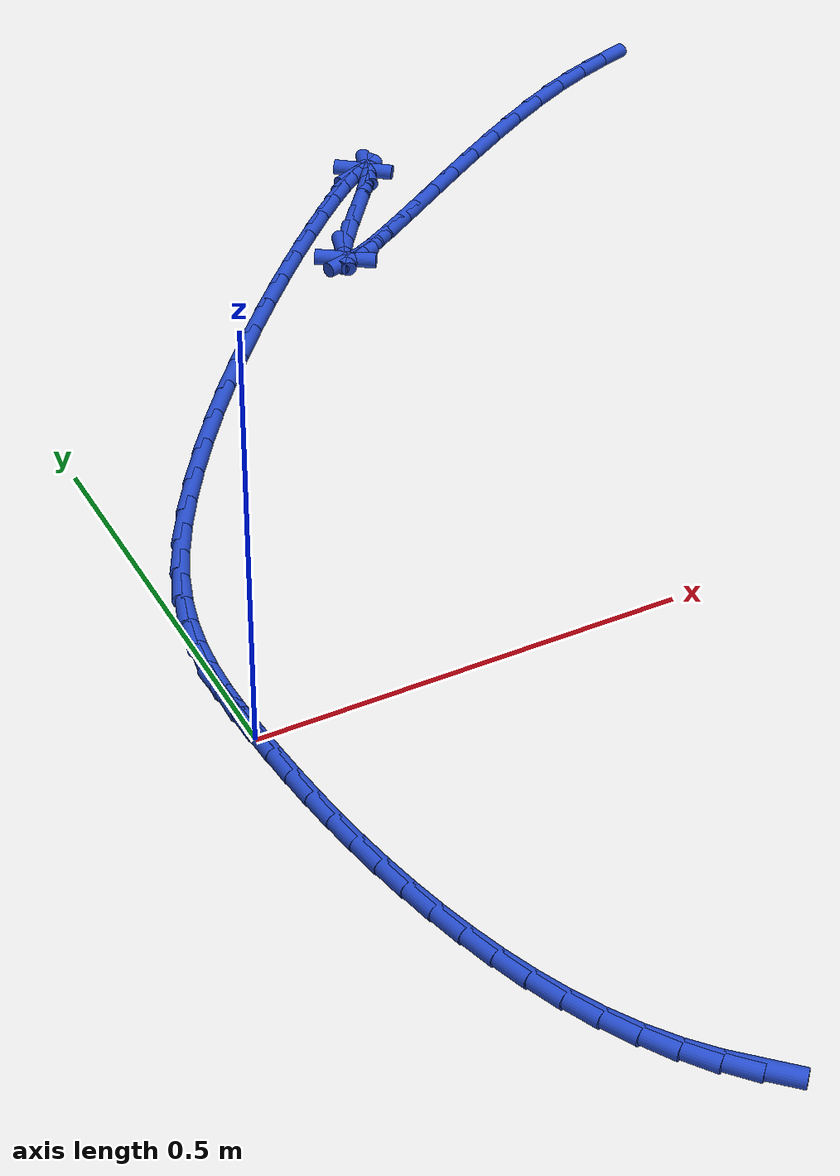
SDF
<sdf version="1.6">
 <world name="default">
  <model name="ground_plane">
   <static>1</static>
   <link name="link">
    <collision name="collision">
     <geometry><plane><normal>0 0 1</normal><size>100 100</size></plane></geometry>
     <surface><friction><ode><mu>100</mu><mu2>50</mu2></ode></friction></surface>
    </collision>
    <visual name="visual">
     <cast_shadows>0</cast_shadows>
     <geometry><plane><normal>0 0 1</normal><size>100 100</size></plane></geometry>
     <material>
      <script><uri>file://media/materials/scripts/gazebo.material</uri><name>Gazebo/WhiteGlow</name></script>
     </material>
    </visual>
   </link>
  </model>
  <model name="line">
   <link name="link_0">
    <pose>-5.421010862427522e-18 -6.245004513516506e-17 0.01 0 1.57 -1.516971738887557</pose>
    <collision name="collision">
     <geometry><cylinder><radius>0.01</radius><length>0.08</length></cylinder></geometry>
    </collision>
    <visual name="visual">
     <material>
      <script><name>Gazebo/Blue</name><uri>file://media/materials/scripts/gazebo.material</uri></script>
     </material>
     <geometry><cylinder><radius>0.01</radius><length>0.08</length></cylinder></geometry>
    </visual>
   </link>
   <link name="link_1">
    <pose>-0.0019677262206567684 0.036522818023814574 0.01 0 1.57 -1.5498940656108167</pose>
    <collision name="collision">
     <geometry><cylinder><radius>0.01</radius><length>0.08</length></cylinder></geometry>
    </collision>
    <visual name="visual">
     <material>
      <script><name>Gazebo/Blue</name><uri>file://media/materials/scripts/gazebo.material</uri></script>
     </material>
     <geometry><cylinder><radius>0.01</radius><length>0.08</length></cylinder></geometry>
    </visual>
   </link>
   <link name="link_2">
    <pose>-0.0027258256793479484 0.072786313303385 0.01 0 1.57 1.542573850887566</pose>
    <collision name="collision">
     <geometry><cylinder><radius>0.01</radius><length>0.08</length></cylinder></geometry>
    </collision>
    <visual name="visual">
     <material>
      <script><name>Gazebo/Blue</name><uri>file://media/materials/scripts/gazebo.material</uri></script>
     </material>
     <geometry><cylinder><radius>0.01</radius><length>0.08</length></cylinder></geometry>
    </visual>
   </link>
   <link name="link_3">
    <pose>-0.0016979489906153566 0.10919714322356291 0.01 0 1.57 1.4793379034176113</pose>
    <collision name="collision">
     <geometry><cylinder><radius>0.01</radius><length>0.08</length></cylinder></geometry>
    </collision>
    <visual name="visual">
     <material>
      <script><name>Gazebo/Blue</name><uri>file://media/materials/scripts/gazebo.material</uri></script>
     </material>
     <geometry><cylinder><radius>0.01</radius><length>0.08</length></cylinder></geometry>
    </visual>
   </link>
   <link name="link_4">
    <pose>0.0016922532309991837 0.14616196516920005 0.01 0 1.57 1.4054433089721208</pose>
    <collision name="collision">
     <geometry><cylinder><radius>0.01</radius><length>0.08</length></cylinder></geometry>
    </collision>
    <visual name="visual">
     <material>
      <script><name>Gazebo/Blue</name><uri>file://media/materials/scripts/gazebo.material</uri></script>
     </material>
     <geometry><cylinder><radius>0.01</radius><length>0.08</length></cylinder></geometry>
    </visual>
   </link>
   <link name="link_5">
    <pose>0.008021130370953857 0.18408743652514828 0.01 0 1.57 1.3253217344991335</pose>
    <collision name="collision">
     <geometry><cylinder><radius>0.01</radius><length>0.08</length></cylinder></geometry>
    </collision>
    <visual name="visual">
     <material>
      <script><name>Gazebo/Blue</name><uri>file://media/materials/scripts/gazebo.material</uri></script>
     </material>
     <geometry><cylinder><radius>0.01</radius><length>0.08</length></cylinder></geometry>
    </visual>
   </link>
   <link name="link_6">
    <pose>0.017865031814706844 0.22338021467625926 0.01 0 1.57 1.243656388170542</pose>
    <collision name="collision">
     <geometry><cylinder><radius>0.01</radius><length>0.08</length></cylinder></geometry>
    </collision>
    <visual name="visual">
     <material>
      <script><name>Gazebo/Blue</name><uri>file://media/materials/scripts/gazebo.material</uri></script>
     </material>
     <geometry><cylinder><radius>0.01</radius><length>0.08</length></cylinder></geometry>
    </visual>
   </link>
   <link name="link_7">
    <pose>0.03180030694771633 0.2644469570073847 0.01 0 1.57 1.1646350907035172</pose>
    <collision name="collision">
     <geometry><cylinder><radius>0.01</radius><length>0.08</length></cylinder></geometry>
    </collision>
    <visual name="visual">
     <material>
      <script><name>Gazebo/Blue</name><uri>file://media/materials/scripts/gazebo.material</uri></script>
     </material>
     <geometry><cylinder><radius>0.01</radius><length>0.08</length></cylinder></geometry>
    </visual>
   </link>
   <link name="link_8">
    <pose>0.050398222578810534 0.307690395071881 0.01 0 1.57 1.0955145047660175</pose>
    <collision name="collision">
     <geometry><cylinder><radius>0.01</radius><length>0.08</length></cylinder></geometry>
    </collision>
    <visual name="visual">
     <material>
      <script><name>Gazebo/Blue</name><uri>file://media/materials/scripts/gazebo.material</uri></script>
     </material>
     <geometry><cylinder><radius>0.01</radius><length>0.08</length></cylinder></geometry>
    </visual>
   </link>
   <link name="link_9">
    <pose>0.07381498965637319 0.35319266725000886 0.01 0 1.57 1.041306595246719</pose>
    <collision name="collision">
     <geometry><cylinder><radius>0.01</radius><length>0.08</length></cylinder></geometry>
    </collision>
    <visual name="visual">
     <material>
      <script><name>Gazebo/Blue</name><uri>file://media/materials/scripts/gazebo.material</uri></script>
     </material>
     <geometry><cylinder><radius>0.01</radius><length>0.08</length></cylinder></geometry>
    </visual>
   </link>
   <link name="link_10">
    <pose>0.10149063260583117 0.40048272250391725 0.01 0 1.57 0.998125263919502</pose>
    <collision name="collision">
     <geometry><cylinder><radius>0.01</radius><length>0.08</length></cylinder></geometry>
    </collision>
    <visual name="visual">
     <material>
      <script><name>Gazebo/Blue</name><uri>file://media/materials/scripts/gazebo.material</uri></script>
     </material>
     <geometry><cylinder><radius>0.01</radius><length>0.08</length></cylinder></geometry>
    </visual>
   </link>
   <link name="link_11">
    <pose>0.1327941896283823 0.4490346793475182 0.01 0 1.57 0.9628135906939901</pose>
    <collision name="collision">
     <geometry><cylinder><radius>0.01</radius><length>0.08</length></cylinder></geometry>
    </collision>
    <visual name="visual">
     <material>
      <script><name>Gazebo/Blue</name><uri>file://media/materials/scripts/gazebo.material</uri></script>
     </material>
     <geometry><cylinder><radius>0.01</radius><length>0.08</length></cylinder></geometry>
    </visual>
   </link>
   <link name="link_12">
    <pose>0.16709469892522447 0.4983226562947236 0.01 0 1.57 0.9332314967239804</pose>
    <collision name="collision">
     <geometry><cylinder><radius>0.01</radius><length>0.08</length></cylinder></geometry>
    </collision>
    <visual name="visual">
     <material>
      <script><name>Gazebo/Blue</name><uri>file://media/materials/scripts/gazebo.material</uri></script>
     </material>
     <geometry><cylinder><radius>0.01</radius><length>0.08</length></cylinder></geometry>
    </visual>
   </link>
   <link name="link_13">
    <pose>0.20376119869755566 0.5478207718594456 0.01 0 1.57 0.9078736980603397</pose>
    <collision name="collision">
     <geometry><cylinder><radius>0.01</radius><length>0.08</length></cylinder></geometry>
    </collision>
    <visual name="visual">
     <material>
      <script><name>Gazebo/Blue</name><uri>file://media/materials/scripts/gazebo.material</uri></script>
     </material>
     <geometry><cylinder><radius>0.01</radius><length>0.08</length></cylinder></geometry>
    </visual>
   </link>
   <link name="link_14">
    <pose>0.24216272714657391 0.597003144555596 0.01 0 1.57 0.8856361692368085</pose>
    <collision name="collision">
     <geometry><cylinder><radius>0.01</radius><length>0.08</length></cylinder></geometry>
    </collision>
    <visual name="visual">
     <material>
      <script><name>Gazebo/Blue</name><uri>file://media/materials/scripts/gazebo.material</uri></script>
     </material>
     <geometry><cylinder><radius>0.01</radius><length>0.08</length></cylinder></geometry>
    </visual>
   </link>
   <link name="link_15">
    <pose>0.28166832247347695 0.6453438928970868 0.01 0 1.57 0.8656667961104185</pose>
    <collision name="collision">
     <geometry><cylinder><radius>0.01</radius><length>0.08</length></cylinder></geometry>
    </collision>
    <visual name="visual">
     <material>
      <script><name>Gazebo/Blue</name><uri>file://media/materials/scripts/gazebo.material</uri></script>
     </material>
     <geometry><cylinder><radius>0.01</radius><length>0.08</length></cylinder></geometry>
    </visual>
   </link>
   <link name="link_16">
    <pose>0.3216470228794627 0.6923171353978297 0.01 0 1.57 0.8472622095039724</pose>
    <collision name="collision">
     <geometry><cylinder><radius>0.01</radius><length>0.08</length></cylinder></geometry>
    </collision>
    <visual name="visual">
     <material>
      <script><name>Gazebo/Blue</name><uri>file://media/materials/scripts/gazebo.material</uri></script>
     </material>
     <geometry><cylinder><radius>0.01</radius><length>0.08</length></cylinder></geometry>
    </visual>
   </link>
   <link name="link_17">
    <pose>0.3614678665657291 0.7373969905717369 0.01 0 1.57 0.8297862383139776</pose>
    <collision name="collision">
     <geometry><cylinder><radius>0.01</radius><length>0.08</length></cylinder></geometry>
    </collision>
    <visual name="visual">
     <material>
      <script><name>Gazebo/Blue</name><uri>file://media/materials/scripts/gazebo.material</uri></script>
     </material>
     <geometry><cylinder><radius>0.01</radius><length>0.08</length></cylinder></geometry>
    </visual>
   </link>
   <link name="link_18">
    <pose>0.4004998917334741 0.7800575769327205 0.01 0 1.57 0.8125898857126308</pose>
    <collision name="collision">
     <geometry><cylinder><radius>0.01</radius><length>0.08</length></cylinder></geometry>
    </collision>
    <visual name="visual">
     <material>
      <script><name>Gazebo/Blue</name><uri>file://media/materials/scripts/gazebo.material</uri></script>
     </material>
     <geometry><cylinder><radius>0.01</radius><length>0.08</length></cylinder></geometry>
    </visual>
   </link>
   <link name="link_19">
    <pose>0.43811213658389586 0.8197730129946923 0.01 0 1.57 0.7949082578066576</pose>
    <collision name="collision">
     <geometry><cylinder><radius>0.01</radius><length>0.08</length></cylinder></geometry>
    </collision>
    <visual name="visual">
     <material>
      <script><name>Gazebo/Blue</name><uri>file://media/materials/scripts/gazebo.material</uri></script>
     </material>
     <geometry><cylinder><radius>0.01</radius><length>0.08</length></cylinder></geometry>
    </visual>
   </link>
   <link name="link_20">
    <pose>0.47367363931819195 0.8560174172715643 0.01 0 1.57 0.7756896687060839</pose>
    <collision name="collision">
     <geometry><cylinder><radius>0.01</radius><length>0.08</length></cylinder></geometry>
    </collision>
    <visual name="visual">
     <material>
      <script><name>Gazebo/Blue</name><uri>file://media/materials/scripts/gazebo.material</uri></script>
     </material>
     <geometry><cylinder><radius>0.01</radius><length>0.08</length></cylinder></geometry>
    </visual>
   </link>
   <link name="link_21">
    <pose>0.5065534381375605 0.8882649082772485 0.01 0 1.57 0.7532504360639813</pose>
    <collision name="collision">
     <geometry><cylinder><radius>0.01</radius><length>0.08</length></cylinder></geometry>
    </collision>
    <visual name="visual">
     <material>
      <script><name>Gazebo/Blue</name><uri>file://media/materials/scripts/gazebo.material</uri></script>
     </material>
     <geometry><cylinder><radius>0.01</radius><length>0.08</length></cylinder></geometry>
    </visual>
   </link>
   <link name="link_22">
    <pose>0.5361205712431993 0.9159896045256567 0.01 0 1.57 0.7244486027931144</pose>
    <collision name="collision">
     <geometry><cylinder><radius>0.01</radius><length>0.08</length></cylinder></geometry>
    </collision>
    <visual name="visual">
     <material>
      <script><name>Gazebo/Blue</name><uri>file://media/materials/scripts/gazebo.material</uri></script>
     </material>
     <geometry><cylinder><radius>0.01</radius><length>0.08</length></cylinder></geometry>
    </visual>
   </link>
   <link name="link_23">
    <pose>0.5617440768363061 0.9386656245307008 0.01 0 1.57 0.6822941702992007</pose>
    <collision name="collision">
     <geometry><cylinder><radius>0.01</radius><length>0.08</length></cylinder></geometry>
    </collision>
    <visual name="visual">
     <material>
      <script><name>Gazebo/Blue</name><uri>file://media/materials/scripts/gazebo.material</uri></script>
     </material>
     <geometry><cylinder><radius>0.01</radius><length>0.08</length></cylinder></geometry>
    </visual>
   </link>
   <link name="link_24">
    <pose>0.5827929931180793 0.9557670868062931 0.01 0 1.57 0.606931714351735</pose>
    <collision name="collision">
     <geometry><cylinder><radius>0.01</radius><length>0.08</length></cylinder></geometry>
    </collision>
    <visual name="visual">
     <material>
      <script><name>Gazebo/Blue</name><uri>file://media/materials/scripts/gazebo.material</uri></script>
     </material>
     <geometry><cylinder><radius>0.01</radius><length>0.08</length></cylinder></geometry>
    </visual>
   </link>
   <link name="link_25">
    <pose>0.5986363582897163 0.9667681098663448 0.01 0 1.57 0.4121339911330432</pose>
    <collision name="collision">
     <geometry><cylinder><radius>0.01</radius><length>0.08</length></cylinder></geometry>
    </collision>
    <visual name="visual">
     <material>
      <script><name>Gazebo/Blue</name><uri>file://media/materials/scripts/gazebo.material</uri></script>
     </material>
     <geometry><cylinder><radius>0.01</radius><length>0.08</length></cylinder></geometry>
    </visual>
   </link>
   <link name="link_26">
    <pose>0.6086432105524155 0.9711428122247691 0.01 0 1.57 -0.6653680736597327</pose>
    <collision name="collision">
     <geometry><cylinder><radius>0.01</radius><length>0.08</length></cylinder></geometry>
    </collision>
    <visual name="visual">
     <material>
      <script><name>Gazebo/Blue</name><uri>file://media/materials/scripts/gazebo.material</uri></script>
     </material>
     <geometry><cylinder><radius>0.01</radius><length>0.08</length></cylinder></geometry>
    </visual>
   </link>
   <link name="link_27">
    <pose>0.6121825881073746 0.9683653123954771 0.01 0 1.57 1.242701169890033</pose>
    <collision name="collision">
     <geometry><cylinder><radius>0.01</radius><length>0.08</length></cylinder></geometry>
    </collision>
    <visual name="visual">
     <material>
      <script><name>Gazebo/Blue</name><uri>file://media/materials/scripts/gazebo.material</uri></script>
     </material>
     <geometry><cylinder><radius>0.01</radius><length>0.08</length></cylinder></geometry>
    </visual>
   </link>
   <link name="link_28">
    <pose>0.6086235291557914 0.9579097288923809 0.01 0 1.57 1.0267308145427323</pose>
    <collision name="collision">
     <geometry><cylinder><radius>0.01</radius><length>0.08</length></cylinder></geometry>
    </collision>
    <visual name="visual">
     <material>
      <script><name>Gazebo/Blue</name><uri>file://media/materials/scripts/gazebo.material</uri></script>
     </material>
     <geometry><cylinder><radius>0.01</radius><length>0.08</length></cylinder></geometry>
    </visual>
   </link>
   <link name="link_29">
    <pose>0.597335071898864 0.9392501802293926 0.01 0 1.57 0.9500358720568822</pose>
    <collision name="collision">
     <geometry><cylinder><radius>0.01</radius><length>0.08</length></cylinder></geometry>
    </collision>
    <visual name="visual">
     <material>
      <script><name>Gazebo/Blue</name><uri>file://media/materials/scripts/gazebo.material</uri></script>
     </material>
     <geometry><cylinder><radius>0.01</radius><length>0.08</length></cylinder></geometry>
    </visual>
   </link>
   <link name="link_30">
    <pose>0.577900679022999 0.9120714030815712 0.01 0 1.57 0.9229881037805641</pose>
    <collision name="collision">
     <geometry><cylinder><radius>0.01</radius><length>0.08</length></cylinder></geometry>
    </collision>
    <visual name="visual">
     <material>
      <script><name>Gazebo/Blue</name><uri>file://media/materials/scripts/gazebo.material</uri></script>
     </material>
     <geometry><cylinder><radius>0.01</radius><length>0.08</length></cylinder></geometry>
    </visual>
   </link>
   <link name="link_31">
    <pose>0.5528014206703311 0.8789043051359231 0.01 0 1.57 0.9223799997988826</pose>
    <collision name="collision">
     <geometry><cylinder><radius>0.01</radius><length>0.08</length></cylinder></geometry>
    </collision>
    <visual name="visual">
     <material>
      <script><name>Gazebo/Blue</name><uri>file://media/materials/scripts/gazebo.material</uri></script>
     </material>
     <geometry><cylinder><radius>0.01</radius><length>0.08</length></cylinder></geometry>
    </visual>
   </link>
   <link name="link_32">
    <pose>0.5265999586464951 0.8443244346810134 0.01 0 1.57 0.9445234965934007</pose>
    <collision name="collision">
     <geometry><cylinder><radius>0.01</radius><length>0.08</length></cylinder></geometry>
    </collision>
    <visual name="visual">
     <material>
      <script><name>Gazebo/Blue</name><uri>file://media/materials/scripts/gazebo.material</uri></script>
     </material>
     <geometry><cylinder><radius>0.01</radius><length>0.08</length></cylinder></geometry>
    </visual>
   </link>
   <link name="link_33">
    <pose>0.5039045586338088 0.8129521343517196 0.01 0 1.57 1.0159028905434107</pose>
    <collision name="collision">
     <geometry><cylinder><radius>0.01</radius><length>0.08</length></cylinder></geometry>
    </collision>
    <visual name="visual">
     <material>
      <script><name>Gazebo/Blue</name><uri>file://media/materials/scripts/gazebo.material</uri></script>
     </material>
     <geometry><cylinder><radius>0.01</radius><length>0.08</length></cylinder></geometry>
    </visual>
   </link>
   <link name="link_34">
    <pose>0.4892876046066976 0.7893710163203097 0.01 0 1.57 1.2760694479814363</pose>
    <collision name="collision">
     <geometry><cylinder><radius>0.01</radius><length>0.08</length></cylinder></geometry>
    </collision>
    <visual name="visual">
     <material>
      <script><name>Gazebo/Blue</name><uri>file://media/materials/scripts/gazebo.material</uri></script>
     </material>
     <geometry><cylinder><radius>0.01</radius><length>0.08</length></cylinder></geometry>
    </visual>
   </link>
   <link name="link_35">
    <pose>0.48523841470276363 0.7760323535721672 0.01 0 1.57 -0.5916208756530282</pose>
    <collision name="collision">
     <geometry><cylinder><radius>0.01</radius><length>0.08</length></cylinder></geometry>
    </collision>
    <visual name="visual">
     <material>
      <script><name>Gazebo/Blue</name><uri>file://media/materials/scripts/gazebo.material</uri></script>
     </material>
     <geometry><cylinder><radius>0.01</radius><length>0.08</length></cylinder></geometry>
    </visual>
   </link>
   <link name="link_36">
    <pose>0.49105708342145665 0.7721227567766041 0.01 0 1.57 0.29238355709120445</pose>
    <collision name="collision">
     <geometry><cylinder><radius>0.01</radius><length>0.08</length></cylinder></geometry>
    </collision>
    <visual name="visual">
     <material>
      <script><name>Gazebo/Blue</name><uri>file://media/materials/scripts/gazebo.material</uri></script>
     </material>
     <geometry><cylinder><radius>0.01</radius><length>0.08</length></cylinder></geometry>
    </visual>
   </link>
   <link name="link_37">
    <pose>0.5057739319562572 0.7765526820130366 0.01 0 1.57 0.4761877554910015</pose>
    <collision name="collision">
     <geometry><cylinder><radius>0.01</radius><length>0.08</length></cylinder></geometry>
    </collision>
    <visual name="visual">
     <material>
      <script><name>Gazebo/Blue</name><uri>file://media/materials/scripts/gazebo.material</uri></script>
     </material>
     <geometry><cylinder><radius>0.01</radius><length>0.08</length></cylinder></geometry>
    </visual>
   </link>
   <link name="link_38">
    <pose>0.528419281500646 0.7882325853608815 0.01 0 1.57 0.5423504735451992</pose>
    <collision name="collision">
     <geometry><cylinder><radius>0.01</radius><length>0.08</length></cylinder></geometry>
    </collision>
    <visual name="visual">
     <material>
      <script><name>Gazebo/Blue</name><uri>file://media/materials/scripts/gazebo.material</uri></script>
     </material>
     <geometry><cylinder><radius>0.01</radius><length>0.08</length></cylinder></geometry>
    </visual>
   </link>
   <link name="link_39">
    <pose>0.5580234532481033 0.8060729228995551 0.01 0 1.57 0.5719298837502761</pose>
    <collision name="collision">
     <geometry><cylinder><radius>0.01</radius><length>0.08</length></cylinder></geometry>
    </collision>
    <visual name="visual">
     <material>
      <script><name>Gazebo/Blue</name><uri>file://media/materials/scripts/gazebo.material</uri></script>
     </material>
     <geometry><cylinder><radius>0.01</radius><length>0.08</length></cylinder></geometry>
    </visual>
   </link>
   <link name="link_40">
    <pose>0.5936167683921101 0.8289841507084734 0.01 0 1.57 0.5848832302612053</pose>
    <collision name="collision">
     <geometry><cylinder><radius>0.01</radius><length>0.08</length></cylinder></geometry>
    </collision>
    <visual name="visual">
     <material>
      <script><name>Gazebo/Blue</name><uri>file://media/materials/scripts/gazebo.material</uri></script>
     </material>
     <geometry><cylinder><radius>0.01</radius><length>0.08</length></cylinder></geometry>
    </visual>
   </link>
   <link name="link_41">
    <pose>0.634229548126147 0.8558767248670534 0.01 0 1.57 0.5881472576147512</pose>
    <collision name="collision">
     <geometry><cylinder><radius>0.01</radius><length>0.08</length></cylinder></geometry>
    </collision>
    <visual name="visual">
     <material>
      <script><name>Gazebo/Blue</name><uri>file://media/materials/scripts/gazebo.material</uri></script>
     </material>
     <geometry><cylinder><radius>0.01</radius><length>0.08</length></cylinder></geometry>
    </visual>
   </link>
   <link name="link_42">
    <pose>0.6788921136436937 0.8856611014547106 0.01 0 1.57 0.5844879127156619</pose>
    <collision name="collision">
     <geometry><cylinder><radius>0.01</radius><length>0.08</length></cylinder></geometry>
    </collision>
    <visual name="visual">
     <material>
      <script><name>Gazebo/Blue</name><uri>file://media/materials/scripts/gazebo.material</uri></script>
     </material>
     <geometry><cylinder><radius>0.01</radius><length>0.08</length></cylinder></geometry>
    </visual>
   </link>
   <link name="link_43">
    <pose>0.7266347861382322 0.9172477365508622 0.01 0 1.57 0.574890829373551</pose>
    <collision name="collision">
     <geometry><cylinder><radius>0.01</radius><length>0.08</length></cylinder></geometry>
    </collision>
    <visual name="visual">
     <material>
      <script><name>Gazebo/Blue</name><uri>file://media/materials/scripts/gazebo.material</uri></script>
     </material>
     <geometry><cylinder><radius>0.01</radius><length>0.08</length></cylinder></geometry>
    </visual>
   </link>
   <link name="link_44">
    <pose>0.7764878868032421 0.9495470862349243 0.01 0 1.57 0.5593233095142008</pose>
    <collision name="collision">
     <geometry><cylinder><radius>0.01</radius><length>0.08</length></cylinder></geometry>
    </collision>
    <visual name="visual">
     <material>
      <script><name>Gazebo/Blue</name><uri>file://media/materials/scripts/gazebo.material</uri></script>
     </material>
     <geometry><cylinder><radius>0.01</radius><length>0.08</length></cylinder></geometry>
    </visual>
   </link>
   <link name="link_45">
    <pose>0.8274817368322038 0.9814696065863133 0.01 0 1.57 0.5369228250322726</pose>
    <collision name="collision">
     <geometry><cylinder><radius>0.01</radius><length>0.08</length></cylinder></geometry>
    </collision>
    <visual name="visual">
     <material>
      <script><name>Gazebo/Blue</name><uri>file://media/materials/scripts/gazebo.material</uri></script>
     </material>
     <geometry><cylinder><radius>0.01</radius><length>0.08</length></cylinder></geometry>
    </visual>
   </link>
   <link name="link_46">
    <pose>0.8786466574185986 1.0119257536844453 0.01 0 1.57 0.5058679131148842</pose>
    <collision name="collision">
     <geometry><cylinder><radius>0.01</radius><length>0.08</length></cylinder></geometry>
    </collision>
    <visual name="visual">
     <material>
      <script><name>Gazebo/Blue</name><uri>file://media/materials/scripts/gazebo.material</uri></script>
     </material>
     <geometry><cylinder><radius>0.01</radius><length>0.08</length></cylinder></geometry>
    </visual>
   </link>
   <link name="link_47">
    <pose>0.9290129697559066 1.0398259836087371 0.01 0 1.57 0.4629190210279038</pose>
    <collision name="collision">
     <geometry><cylinder><radius>0.01</radius><length>0.08</length></cylinder></geometry>
    </collision>
    <visual name="visual">
     <material>
      <script><name>Gazebo/Blue</name><uri>file://media/materials/scripts/gazebo.material</uri></script>
     </material>
     <geometry><cylinder><radius>0.01</radius><length>0.08</length></cylinder></geometry>
    </visual>
   </link>
   <link name="link_48">
    <pose>0.9776109950376088 1.064080752438605 0.01 0 1.57 0.4070068377920131</pose>
    <collision name="collision">
     <geometry><cylinder><radius>0.01</radius><length>0.08</length></cylinder></geometry>
    </collision>
    <visual name="visual">
     <material>
      <script><name>Gazebo/Blue</name><uri>file://media/materials/scripts/gazebo.material</uri></script>
     </material>
     <geometry><cylinder><radius>0.01</radius><length>0.08</length></cylinder></geometry>
    </visual>
   </link>
   <link name="link_49">
    <pose>1.023609973890626 1.0839098650117842 0.01 0 1.57 0.35722260214612905</pose>
    <collision name="collision">
     <geometry><cylinder><radius>0.01</radius><length>0.08</length></cylinder></geometry>
    </collision>
    <visual name="visual">
     <material>
      <script><name>Gazebo/Blue</name><uri>file://media/materials/scripts/gazebo.material</uri></script>
     </material>
     <geometry><cylinder><radius>0.01</radius><length>0.08</length></cylinder></geometry>
    </visual>
   </link>
   <link name="link_50">
    <pose>1.066861637570058 1.1000529108582113 0.01 0 1.57 0.3248698915195105</pose>
    <collision name="collision">
     <geometry><cylinder><radius>0.01</radius><length>0.08</length></cylinder></geometry>
    </collision>
    <visual name="visual">
     <material>
      <script><name>Gazebo/Blue</name><uri>file://media/materials/scripts/gazebo.material</uri></script>
     </material>
     <geometry><cylinder><radius>0.01</radius><length>0.08</length></cylinder></geometry>
    </visual>
   </link>
   <link name="link_193">
    <pose>0.21614875533651443 -0.6049702102781337 0.01 0 1.57 -0.7516681151767709</pose>
    <collision name="collision">
     <geometry><cylinder><radius>0.01</radius><length>0.08</length></cylinder></geometry>
    </collision>
    <visual name="visual">
     <material>
      <script><name>Gazebo/Blue</name><uri>file://media/materials/scripts/gazebo.material</uri></script>
     </material>
     <geometry><cylinder><radius>0.01</radius><length>0.08</length></cylinder></geometry>
    </visual>
   </link>
   <link name="link_194">
    <pose>0.18877994305405907 -0.5793881123916801 0.01 0 1.57 -0.8381859430811548</pose>
    <collision name="collision">
     <geometry><cylinder><radius>0.01</radius><length>0.08</length></cylinder></geometry>
    </collision>
    <visual name="visual">
     <material>
      <script><name>Gazebo/Blue</name><uri>file://media/materials/scripts/gazebo.material</uri></script>
     </material>
     <geometry><cylinder><radius>0.01</radius><length>0.08</length></cylinder></geometry>
    </visual>
   </link>
   <link name="link_195">
    <pose>0.16368750848320382 -0.5514961482277795 0.01 0 1.57 -0.927467158412184</pose>
    <collision name="collision">
     <geometry><cylinder><radius>0.01</radius><length>0.08</length></cylinder></geometry>
    </collision>
    <visual name="visual">
     <material>
      <script><name>Gazebo/Blue</name><uri>file://media/materials/scripts/gazebo.material</uri></script>
     </material>
     <geometry><cylinder><radius>0.01</radius><length>0.08</length></cylinder></geometry>
    </visual>
   </link>
   <link name="link_196">
    <pose>0.140991133732645 -0.5212234726745828 0.01 0 1.57 -1.0078871924418755</pose>
    <collision name="collision">
     <geometry><cylinder><radius>0.01</radius><length>0.08</length></cylinder></geometry>
    </collision>
    <visual name="visual">
     <material>
      <script><name>Gazebo/Blue</name><uri>file://media/materials/scripts/gazebo.material</uri></script>
     </material>
     <geometry><cylinder><radius>0.01</radius><length>0.08</length></cylinder></geometry>
    </visual>
   </link>
   <link name="link_197">
    <pose>0.12056343118539352 -0.48885042538636986 0.01 0 1.57 -1.0790715499360202</pose>
    <collision name="collision">
     <geometry><cylinder><radius>0.01</radius><length>0.08</length></cylinder></geometry>
    </collision>
    <visual name="visual">
     <material>
      <script><name>Gazebo/Blue</name><uri>file://media/materials/scripts/gazebo.material</uri></script>
     </material>
     <geometry><cylinder><radius>0.01</radius><length>0.08</length></cylinder></geometry>
    </visual>
   </link>
   <link name="link_198">
    <pose>0.10226134918825443 -0.4546796108694796 0.01 0 1.57 -1.141668945183038</pose>
    <collision name="collision">
     <geometry><cylinder><radius>0.01</radius><length>0.08</length></cylinder></geometry>
    </collision>
    <visual name="visual">
     <material>
      <script><name>Gazebo/Blue</name><uri>file://media/materials/scripts/gazebo.material</uri></script>
     </material>
     <geometry><cylinder><radius>0.01</radius><length>0.08</length></cylinder></geometry>
    </visual>
   </link>
   <link name="link_199">
    <pose>0.08594183608803319 -0.4190136336302511 0.01 0 1.57 -1.1964660734682908</pose>
    <collision name="collision">
     <geometry><cylinder><radius>0.01</radius><length>0.08</length></cylinder></geometry>
    </collision>
    <visual name="visual">
     <material>
      <script><name>Gazebo/Blue</name><uri>file://media/materials/scripts/gazebo.material</uri></script>
     </material>
     <geometry><cylinder><radius>0.01</radius><length>0.08</length></cylinder></geometry>
    </visual>
   </link>
   <link name="link_200">
    <pose>0.07146184023153533 -0.38215509817502363 0.01 0 1.57 -1.24426832385134</pose>
    <collision name="collision">
     <geometry><cylinder><radius>0.01</radius><length>0.08</length></cylinder></geometry>
    </collision>
    <visual name="visual">
     <material>
      <script><name>Gazebo/Blue</name><uri>file://media/materials/scripts/gazebo.material</uri></script>
     </material>
     <geometry><cylinder><radius>0.01</radius><length>0.08</length></cylinder></geometry>
    </visual>
   </link>
   <link name="link_201">
    <pose>0.05867830996556637 -0.3444066090101365 0.01 0 1.57 -1.2858287351804965</pose>
    <collision name="collision">
     <geometry><cylinder><radius>0.01</radius><length>0.08</length></cylinder></geometry>
    </collision>
    <visual name="visual">
     <material>
      <script><name>Gazebo/Blue</name><uri>file://media/materials/scripts/gazebo.material</uri></script>
     </material>
     <geometry><cylinder><radius>0.01</radius><length>0.08</length></cylinder></geometry>
    </visual>
   </link>
   <link name="link_202">
    <pose>0.047448193636931583 -0.3060707706419281 0.01 0 1.57 -1.3219477127716952</pose>
    <collision name="collision">
     <geometry><cylinder><radius>0.01</radius><length>0.08</length></cylinder></geometry>
    </collision>
    <visual name="visual">
     <material>
      <script><name>Gazebo/Blue</name><uri>file://media/materials/scripts/gazebo.material</uri></script>
     </material>
     <geometry><cylinder><radius>0.01</radius><length>0.08</length></cylinder></geometry>
    </visual>
   </link>
   <link name="link_203">
    <pose>0.03763124210066853 -0.26743897145588175 0.01 0 1.57 -1.3544709174022698</pose>
    <collision name="collision">
     <geometry><cylinder><radius>0.01</radius><length>0.08</length></cylinder></geometry>
    </collision>
    <visual name="visual">
     <material>
      <script><name>Gazebo/Blue</name><uri>file://media/materials/scripts/gazebo.material</uri></script>
     </material>
     <geometry><cylinder><radius>0.01</radius><length>0.08</length></cylinder></geometry>
    </visual>
   </link>
   <link name="link_204">
    <pose>0.029115480974244115 -0.22868943936605696 0.01 0 1.57 -1.3843600843429649</pose>
    <collision name="collision">
     <geometry><cylinder><radius>0.01</radius><length>0.08</length></cylinder></geometry>
    </collision>
    <visual name="visual">
     <material>
      <script><name>Gazebo/Blue</name><uri>file://media/materials/scripts/gazebo.material</uri></script>
     </material>
     <geometry><cylinder><radius>0.01</radius><length>0.08</length></cylinder></geometry>
    </visual>
   </link>
   <link name="link_205">
    <pose>0.021805322117358767 -0.1899348217214958 0.01 0 1.57 -1.4117301992387024</pose>
    <collision name="collision">
     <geometry><cylinder><radius>0.01</radius><length>0.08</length></cylinder></geometry>
    </collision>
    <visual name="visual">
     <material>
      <script><name>Gazebo/Blue</name><uri>file://media/materials/scripts/gazebo.material</uri></script>
     </material>
     <geometry><cylinder><radius>0.01</radius><length>0.08</length></cylinder></geometry>
    </visual>
   </link>
   <link name="link_206">
    <pose>0.015605378047840549 -0.15128696280283704 0.01 0 1.57 -1.4366799944045834</pose>
    <collision name="collision">
     <geometry><cylinder><radius>0.01</radius><length>0.08</length></cylinder></geometry>
    </collision>
    <visual name="visual">
     <material>
      <script><name>Gazebo/Blue</name><uri>file://media/materials/scripts/gazebo.material</uri></script>
     </material>
     <geometry><cylinder><radius>0.01</radius><length>0.08</length></cylinder></geometry>
    </visual>
   </link>
   <link name="link_207">
    <pose>0.010420261283517503 -0.11285770689071933 0.01 0 1.57 -1.4592971652314048</pose>
    <collision name="collision">
     <geometry><cylinder><radius>0.01</radius><length>0.08</length></cylinder></geometry>
    </collision>
    <visual name="visual">
     <material>
      <script><name>Gazebo/Blue</name><uri>file://media/materials/scripts/gazebo.material</uri></script>
     </material>
     <geometry><cylinder><radius>0.01</radius><length>0.08</length></cylinder></geometry>
    </visual>
   </link>
   <link name="link_208">
    <pose>0.006154584342217688 -0.07475889826578141 0.01 0 1.57 -1.4796543442644454</pose>
    <collision name="collision">
     <geometry><cylinder><radius>0.01</radius><length>0.08</length></cylinder></geometry>
    </collision>
    <visual name="visual">
     <material>
      <script><name>Gazebo/Blue</name><uri>file://media/materials/scripts/gazebo.material</uri></script>
     </material>
     <geometry><cylinder><radius>0.01</radius><length>0.08</length></cylinder></geometry>
    </visual>
   </link>
   <link name="link_209">
    <pose>0.002712959741769093 -0.037102381208661175 0.01 0 1.57 -1.4978053216853338</pose>
    <collision name="collision">
     <geometry><cylinder><radius>0.01</radius><length>0.08</length></cylinder></geometry>
    </collision>
    <visual name="visual">
     <material>
      <script><name>Gazebo/Blue</name><uri>file://media/materials/scripts/gazebo.material</uri></script>
     </material>
     <geometry><cylinder><radius>0.01</radius><length>0.08</length></cylinder></geometry>
    </visual>
   </link>
   <link name="link_210">
    <pose>-1.691355389077387e-17 6.938893903907228e-17 0.01 0 1.57 -1.5137811354343909</pose>
    <collision name="collision">
     <geometry><cylinder><radius>0.01</radius><length>0.08</length></cylinder></geometry>
    </collision>
    <visual name="visual">
     <material>
      <script><name>Gazebo/Blue</name><uri>file://media/materials/scripts/gazebo.material</uri></script>
     </material>
     <geometry><cylinder><radius>0.01</radius><length>0.08</length></cylinder></geometry>
    </visual>
   </link>
   <link name="link_211">
    <pose>-0.002079682365261796 0.036436401079566194 0.01 0 1.57 -1.5275856072135705</pose>
    <collision name="collision">
     <geometry><cylinder><radius>0.01</radius><length>0.08</length></cylinder></geometry>
    </collision>
    <visual name="visual">
     <material>
      <script><name>Gazebo/Blue</name><uri>file://media/materials/scripts/gazebo.material</uri></script>
     </material>
     <geometry><cylinder><radius>0.01</radius><length>0.08</length></cylinder></geometry>
    </visual>
   </link>
   <link name="link_212">
    <pose>-0.0036214748361881755 0.07209497774939921 0.01 0 1.57 -1.5206065134999884</pose>
    <collision name="collision">
     <geometry><cylinder><radius>0.01</radius><length>0.08</length></cylinder></geometry>
    </collision>
    <visual name="visual">
     <material>
      <script><name>Gazebo/Blue</name><uri>file://media/materials/scripts/gazebo.material</uri></script>
     </material>
     <geometry><cylinder><radius>0.01</radius><length>0.08</length></cylinder></geometry>
    </visual>
   </link>
  </model>
 </world>
</sdf>
